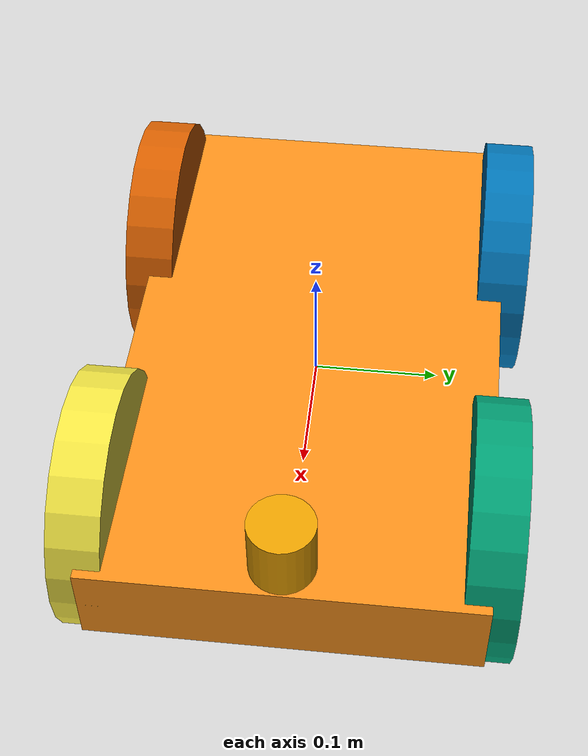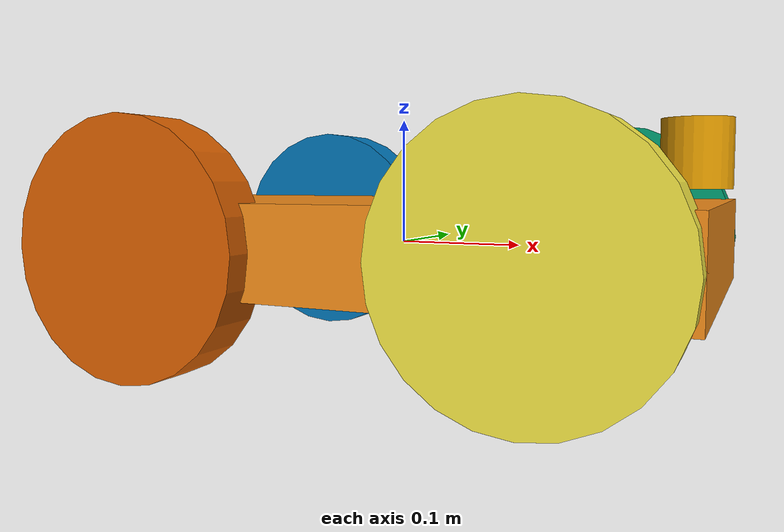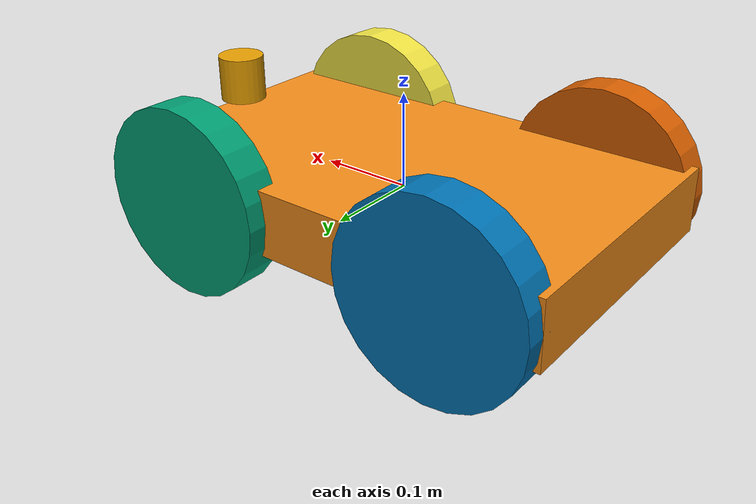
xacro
<?xml version="1.0" ?>

<robot name="skid_steer_bot" xmlns:xacro="http://www.ros.org/wiki/xacro">

  <gazebo reference="link_chassis">
    <material>Gazebo/Orange</material>
  </gazebo>

  <gazebo>
    <plugin name="skid_steer_drive_controller" filename="libgazebo_ros_skid_steer_drive.so">
      <updateRate>100.0</updateRate>
      <robotNamespace>/follower</robotNamespace>
      <leftFrontJoint>front_left_wheel_joint</leftFrontJoint>
      <rightFrontJoint>front_right_wheel_joint</rightFrontJoint>
      <leftRearJoint>back_left_wheel_joint</leftRearJoint>
      <rightRearJoint>back_right_wheel_joint</rightRearJoint>
      <wheelSeparation>0.3</wheelSeparation>
      <wheelDiameter>0.2</wheelDiameter>
      <robotBaseFrame>base_footprint</robotBaseFrame>
      <torque>20</torque>
      <topicName>/follower/cmd_vel</topicName>
      <broadcastTF>false</broadcastTF>
    </plugin>
  </gazebo>

  <!-- camera -->
  <gazebo reference="camera_link">
    <sensor type="camera" name="camera1">
      <update_rate>30.0</update_rate>
      <camera name="head">
        <horizontal_fov>1.3962634</horizontal_fov>
        <image>
          <width>400</width>
          <height>300</height>
          <format>R8G8B8</format>
        </image>
        <clip>
          <near>0.2</near>
          <far>300</far>
        </clip>
        <noise>
          <type>gaussian</type>
          <mean>0.0</mean>
          <stddev>0.007</stddev>
        </noise>
      </camera>

      <plugin name="camera_controller" filename="libgazebo_ros_camera.so">
        <alwaysOn>true</alwaysOn>
        <updateRate>0.0</updateRate>
        <cameraName>/follower/camera1</cameraName>
        <imageTopicName>image_raw</imageTopicName>
        <cameraInfoTopicName>camera_info</cameraInfoTopicName>
        <frameName>camera_link</frameName>
        <hackBaseline>0.07</hackBaseline>
        <distortionK1>0.0</distortionK1>
        <distortionK2>0.0</distortionK2>
        <distortionK3>0.0</distortionK3>
        <distortionT1>0.0</distortionT1>
        <distortionT2>0.0</distortionT2>
      </plugin>
    </sensor>
  </gazebo>

  <link name="camera_link">
    <inertial>
      <mass value="1"/>
      <origin rpy="0 0 0" xyz="0 0 0.1"/>
      <inertia ixx="0.00036458333333333335" ixy="0.0" ixz="0.0"
        iyy="0.00036458333333333335" iyz="0.0" izz="0.00031250000000000006"/>
    </inertial>
    <collision>
      <geometry>
        <cylinder length="0.05" radius="0.025" />
      </geometry>
    </collision>
    <visual>
      <origin rpy="0 0 0" xyz="0 0 0"/>
      <geometry>
        <cylinder length="0.05" radius="0.025" />
      </geometry>
    </visual>
  </link>

  <joint name="camera_joint" type="fixed">
    <origin rpy="0 0 0" xyz="0.23 0 0.07"/>
    <child link="camera_link"/>
    <parent link="link_chassis"/>
  </joint>

  <link name="link_chassis">
    <pose>0 0 0.1 0 0 0</pose>
    <inertial>
      <mass value="5"/>
      <origin rpy="0 0 0" xyz="0 0 0.1"/>
      <inertia ixx="0.0395416666667" ixy="0" ixz="0" iyy="0.106208333333"
        iyz="0" izz="0.106208333333"/>
    </inertial>
    <collision>
      <geometry>
        <box size="0.5 0.3 0.07"/>
      </geometry>
    </collision>
    <visual>
      <origin rpy="0 0 0" xyz="0 0 0"/>
      <geometry>
        <box size="0.5 0.3 0.07"/>
      </geometry>
    </visual>
  </link>

  <!-- defining wheel macro -->
  <xacro:macro name="wheel_link_macro" params="position">
    <link name="link_${position}_wheel">
      <inertial>
        <mass value="0.2"/>
        <origin rpy="0 1.5707 1.5707" xyz="0 0 0"/>
        <inertia ixx="0.000526666666667" ixy="0" ixz="0" iyy="0.000526666666667"
          iyz="0" izz="0.001"/>
      </inertial>
      <collision name="link_${position}_wheel_collision">
        <origin rpy="0 1.5707 1.5707" xyz="0 0 0"/>
        <geometry>
          <cylinder length="0.04" radius="0.1"/>
        </geometry>
      </collision>
      <visual name="link_${position}_wheel_visual">
        <origin rpy="0 1.5707 1.5707" xyz="0 0 0"/>
        <geometry>
          <cylinder length="0.04" radius="0.1"/>
        </geometry>
      </visual>
    </link>
  </xacro:macro>

  <!-- defining wheels -->
  <xacro:wheel_link_macro position="front_left" />
  <xacro:wheel_link_macro position="front_right" />
  <xacro:wheel_link_macro position="back_left" />
  <xacro:wheel_link_macro position="back_right" />

  <!-- defining joint macro -->
  <xacro:macro name="wheel_joint_macro" params="position xyz">
    <joint name="${position}_wheel_joint" type="continuous">
      <origin rpy="0 0 0" xyz="${xyz}"/>
      <child link="link_${position}_wheel"/>
      <parent link="link_chassis"/>
      <axis rpy="0 0 0" xyz="0 1 0"/>
      <limit effort="100" velocity="1"/>
      <joint_properties damping="1.0" friction="1.0"/>
    </joint>
  </xacro:macro>

  <!-- defining joints -->
  <xacro:wheel_joint_macro position="front_left"  xyz=" 0.15  0.15 0" />
  <xacro:wheel_joint_macro position="front_right" xyz=" 0.15 -0.15 0" />
  <xacro:wheel_joint_macro position="back_left"   xyz="-0.15  0.15 0" />
  <xacro:wheel_joint_macro position="back_right"  xyz="-0.15 -0.15 0" />
</robot>
